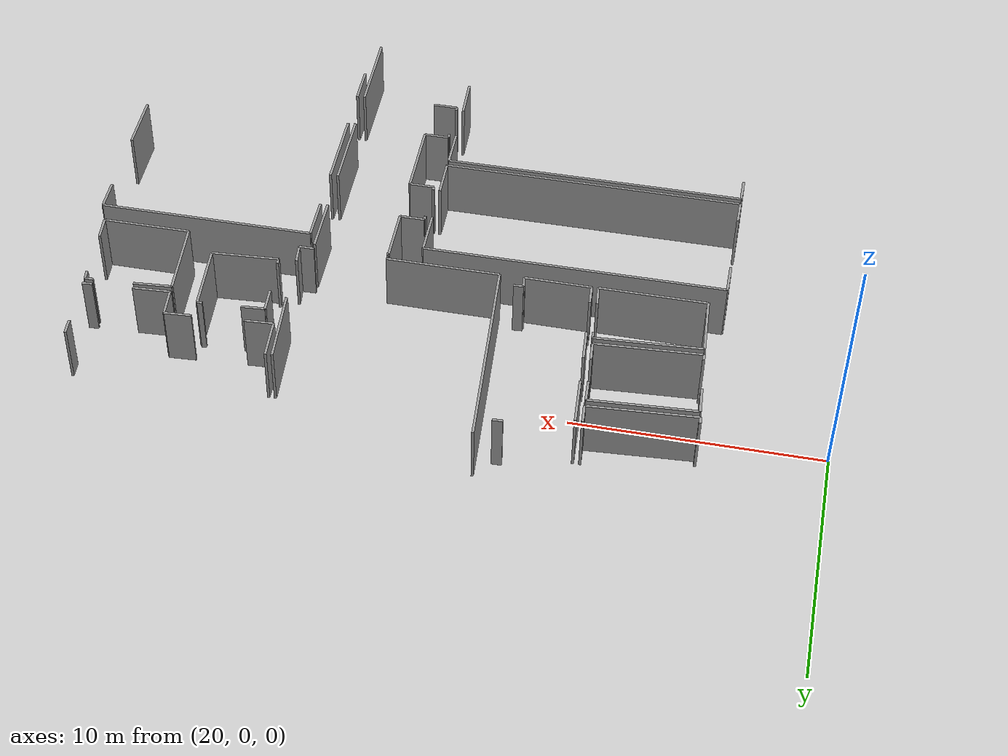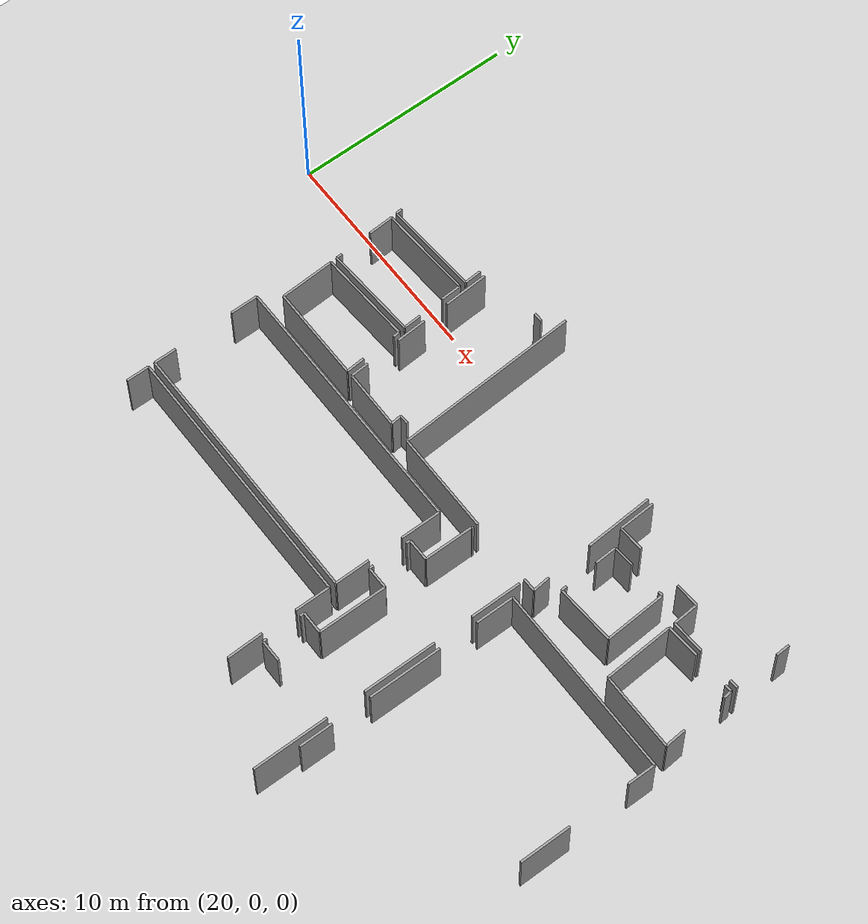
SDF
<sdf version="1.6">
 <world name="default">
  <model name="ground_plane">
   <static>1</static>
   <link name="link">
    <collision name="collision">
     <geometry><plane><normal>0 0 1</normal><size>100 100</size></plane></geometry>
     <surface><friction><ode><mu>100</mu><mu2>50</mu2></ode></friction></surface>
    </collision>
    <visual name="visual">
     <cast_shadows>0</cast_shadows>
     <geometry><plane><normal>0 0 1</normal><size>100 100</size></plane></geometry>
     <material>
      <script><uri>file://media/materials/scripts/gazebo.material</uri><name>Gazebo/Grey</name></script>
     </material>
    </visual>
   </link>
  </model>
  <model name="50025632">
   <static>1</static>
   <link name="Wall_155">
    <collision name="Wall_155_Collision">
     <geometry><box><size>0.606626743355 0.1 2.5</size></box></geometry>
     <pose>0.303313371678 0 1.25 0 0 0</pose>
    </collision>
    <visual name="Wall_155_Visual">
     <pose>0.303313371678 0 1.25 0 0 0</pose>
     <geometry><box><size>0.606626743355 0.1 2.5</size></box></geometry>
     <material>
      <script><uri>file://media/materials/scripts/gazebo.material</uri><name>Gazebo/Grey</name></script>
      <ambient>1 1 1 1</ambient>
     </material>
    </visual>
    <pose>91.8883321585 -53.5030069792 0 0 0 -3.13279891042</pose>
   </link>
   <link name="Wall_156">
    <collision name="Wall_156_Collision">
     <geometry><box><size>4.5834504688 0.1 2.5</size></box></geometry>
     <pose>2.2917252344 0 1.25 0 0 0</pose>
    </collision>
    <visual name="Wall_156_Visual">
     <pose>2.2917252344 0 1.25 0 0 0</pose>
     <geometry><box><size>4.5834504688 0.1 2.5</size></box></geometry>
     <material>
      <script><uri>file://media/materials/scripts/gazebo.material</uri><name>Gazebo/Grey</name></script>
      <ambient>1 1 1 1</ambient>
     </material>
    </visual>
    <pose>88.3373659243 -53.5046581188 0 0 0 3.1391263965</pose>
   </link>
   <link name="Wall_157">
    <collision name="Wall_157_Collision">
     <geometry><box><size>8.34040686701 0.1 2.5</size></box></geometry>
     <pose>4.1702034335 0 1.25 0 0 0</pose>
    </collision>
    <visual name="Wall_157_Visual">
     <pose>4.1702034335 0 1.25 0 0 0</pose>
     <geometry><box><size>8.34040686701 0.1 2.5</size></box></geometry>
     <material>
      <script><uri>file://media/materials/scripts/gazebo.material</uri><name>Gazebo/Grey</name></script>
      <ambient>1 1 1 1</ambient>
     </material>
    </visual>
    <pose>83.7539293947 -53.4933541631 0 0 0 1.62840662752</pose>
   </link>
   <link name="Wall_164">
    <collision name="Wall_164_Collision">
     <geometry><box><size>3.0810093822 0.1 2.5</size></box></geometry>
     <pose>1.5405046911 0 1.25 0 0 0</pose>
    </collision>
    <visual name="Wall_164_Visual">
     <pose>1.5405046911 0 1.25 0 0 0</pose>
     <geometry><box><size>3.0810093822 0.1 2.5</size></box></geometry>
     <material>
      <script><uri>file://media/materials/scripts/gazebo.material</uri><name>Gazebo/Grey</name></script>
      <ambient>1 1 1 1</ambient>
     </material>
    </visual>
    <pose>91.5056488026 -47.5491245785 0 0 0 -1.50929295898</pose>
   </link>
   <link name="Wall_165">
    <collision name="Wall_165_Collision">
     <geometry><box><size>0.798812663162 0.1 2.5</size></box></geometry>
     <pose>0.399406331581 0 1.25 0 0 0</pose>
    </collision>
    <visual name="Wall_165_Visual">
     <pose>0.399406331581 0 1.25 0 0 0</pose>
     <geometry><box><size>0.798812663162 0.1 2.5</size></box></geometry>
     <material>
      <script><uri>file://media/materials/scripts/gazebo.material</uri><name>Gazebo/Grey</name></script>
      <ambient>1 1 1 1</ambient>
     </material>
    </visual>
    <pose>91.8086964253 -52.7081737761 0 0 0 -1.47093782192</pose>
   </link>
   <link name="Wall_166">
    <collision name="Wall_166_Collision">
     <geometry><box><size>2.68700098541 0.1 2.5</size></box></geometry>
     <pose>1.34350049271 0 1.25 0 0 0</pose>
    </collision>
    <visual name="Wall_166_Visual">
     <pose>1.34350049271 0 1.25 0 0 0</pose>
     <geometry><box><size>2.68700098541 0.1 2.5</size></box></geometry>
     <material>
      <script><uri>file://media/materials/scripts/gazebo.material</uri><name>Gazebo/Grey</name></script>
      <ambient>1 1 1 1</ambient>
     </material>
    </visual>
    <pose>82.7708662767 -53.5083414303 0 0 0 3.13346236713</pose>
   </link>
   <link name="Wall_167">
    <collision name="Wall_167_Collision">
     <geometry><box><size>0.822187524035 0.1 2.5</size></box></geometry>
     <pose>0.411093762017 0 1.25 0 0 0</pose>
    </collision>
    <visual name="Wall_167_Visual">
     <pose>0.411093762017 0 1.25 0 0 0</pose>
     <geometry><box><size>0.822187524035 0.1 2.5</size></box></geometry>
     <material>
      <script><uri>file://media/materials/scripts/gazebo.material</uri><name>Gazebo/Grey</name></script>
      <ambient>1 1 1 1</ambient>
     </material>
    </visual>
    <pose>80.0839540983 -53.4864955832 0 0 0 1.63262733236</pose>
   </link>
   <link name="Wall_168">
    <collision name="Wall_168_Collision">
     <geometry><box><size>1.36801589895 0.1 2.5</size></box></geometry>
     <pose>0.684007949477 0 1.25 0 0 0</pose>
    </collision>
    <visual name="Wall_168_Visual">
     <pose>0.684007949477 0 1.25 0 0 0</pose>
     <geometry><box><size>1.36801589895 0.1 2.5</size></box></geometry>
     <material>
      <script><uri>file://media/materials/scripts/gazebo.material</uri><name>Gazebo/Grey</name></script>
      <ambient>1 1 1 1</ambient>
     </material>
    </visual>
    <pose>79.924174589 -51.053731893 0 0 0 1.63452978247</pose>
   </link>
   <link name="Wall_169">
    <collision name="Wall_169_Collision">
     <geometry><box><size>2.00503400734 0.1 2.5</size></box></geometry>
     <pose>1.00251700367 0 1.25 0 0 0</pose>
    </collision>
    <visual name="Wall_169_Visual">
     <pose>1.00251700367 0 1.25 0 0 0</pose>
     <geometry><box><size>2.00503400734 0.1 2.5</size></box></geometry>
     <material>
      <script><uri>file://media/materials/scripts/gazebo.material</uri><name>Gazebo/Grey</name></script>
      <ambient>1 1 1 1</ambient>
     </material>
    </visual>
    <pose>79.7729047991 -48.4963706681 0 0 0 1.62745790005</pose>
   </link>
   <link name="Wall_174">
    <collision name="Wall_174_Collision">
     <geometry><box><size>0.410545882057 0.1 2.5</size></box></geometry>
     <pose>0.205272941028 0 1.25 0 0 0</pose>
    </collision>
    <visual name="Wall_174_Visual">
     <pose>0.205272941028 0 1.25 0 0 0</pose>
     <geometry><box><size>0.410545882057 0.1 2.5</size></box></geometry>
     <material>
      <script><uri>file://media/materials/scripts/gazebo.material</uri><name>Gazebo/Grey</name></script>
      <ambient>1 1 1 1</ambient>
     </material>
    </visual>
    <pose>82.2798427607 -45.9514564956 0 0 0 0.0151597296591</pose>
   </link>
   <link name="Wall_176">
    <collision name="Wall_176_Collision">
     <geometry><box><size>0.398599786753 0.1 2.5</size></box></geometry>
     <pose>0.199299893377 0 1.25 0 0 0</pose>
    </collision>
    <visual name="Wall_176_Visual">
     <pose>0.199299893377 0 1.25 0 0 0</pose>
     <geometry><box><size>0.398599786753 0.1 2.5</size></box></geometry>
     <material>
      <script><uri>file://media/materials/scripts/gazebo.material</uri><name>Gazebo/Grey</name></script>
      <ambient>1 1 1 1</ambient>
     </material>
    </visual>
    <pose>83.1134142392 -53.0049978726 0 0 0 -3.07814027277</pose>
   </link>
   <link name="Wall_177">
    <collision name="Wall_177_Collision">
     <geometry><box><size>0.48125039329 0.1 2.5</size></box></geometry>
     <pose>0.240625196645 0 1.25 0 0 0</pose>
    </collision>
    <visual name="Wall_177_Visual">
     <pose>0.240625196645 0 1.25 0 0 0</pose>
     <geometry><box><size>0.48125039329 0.1 2.5</size></box></geometry>
     <material>
      <script><uri>file://media/materials/scripts/gazebo.material</uri><name>Gazebo/Grey</name></script>
      <ambient>1 1 1 1</ambient>
     </material>
    </visual>
    <pose>82.7156166054 -53.0302730096 0 0 0 -1.45573821305</pose>
   </link>
   <link name="Wall_178">
    <collision name="Wall_178_Collision">
     <geometry><box><size>4.31546369969 0.1 2.5</size></box></geometry>
     <pose>2.15773184985 0 1.25 0 0 0</pose>
    </collision>
    <visual name="Wall_178_Visual">
     <pose>2.15773184985 0 1.25 0 0 0</pose>
     <geometry><box><size>4.31546369969 0.1 2.5</size></box></geometry>
     <material>
      <script><uri>file://media/materials/scripts/gazebo.material</uri><name>Gazebo/Grey</name></script>
      <ambient>1 1 1 1</ambient>
     </material>
    </visual>
    <pose>79.4317539548 -47.2811319197 0 0 0 -3.08013034189</pose>
   </link>
   <link name="Wall_179">
    <collision name="Wall_179_Collision">
     <geometry><box><size>0.28802039587 0.1 2.5</size></box></geometry>
     <pose>0.144010197935 0 1.25 0 0 0</pose>
    </collision>
    <visual name="Wall_179_Visual">
     <pose>0.144010197935 0 1.25 0 0 0</pose>
     <geometry><box><size>0.28802039587 0.1 2.5</size></box></geometry>
     <material>
      <script><uri>file://media/materials/scripts/gazebo.material</uri><name>Gazebo/Grey</name></script>
      <ambient>1 1 1 1</ambient>
     </material>
    </visual>
    <pose>75.1244387713 -47.5462033315 0 0 0 1.64760203955</pose>
   </link>
   <link name="Wall_183">
    <collision name="Wall_183_Collision">
     <geometry><box><size>0.780791954179 0.1 2.5</size></box></geometry>
     <pose>0.39039597709 0 1.25 0 0 0</pose>
    </collision>
    <visual name="Wall_183_Visual">
     <pose>0.39039597709 0 1.25 0 0 0</pose>
     <geometry><box><size>0.780791954179 0.1 2.5</size></box></geometry>
     <material>
      <script><uri>file://media/materials/scripts/gazebo.material</uri><name>Gazebo/Grey</name></script>
      <ambient>1 1 1 1</ambient>
     </material>
    </visual>
    <pose>79.3841249278 -46.5017940267 0 0 0 -1.50975751207</pose>
   </link>
   <link name="Wall_184">
    <collision name="Wall_184_Collision">
     <geometry><box><size>4.26593269141 0.1 2.5</size></box></geometry>
     <pose>2.1329663457 0 1.25 0 0 0</pose>
    </collision>
    <visual name="Wall_184_Visual">
     <pose>2.1329663457 0 1.25 0 0 0</pose>
     <geometry><box><size>4.26593269141 0.1 2.5</size></box></geometry>
     <material>
      <script><uri>file://media/materials/scripts/gazebo.material</uri><name>Gazebo/Grey</name></script>
      <ambient>1 1 1 1</ambient>
     </material>
    </visual>
    <pose>79.6020753555 -50.4981869217 0 0 0 -3.08478448982</pose>
   </link>
   <link name="Wall_185">
    <collision name="Wall_185_Collision">
     <geometry><box><size>0.267362039866 0.1 2.5</size></box></geometry>
     <pose>0.133681019933 0 1.25 0 0 0</pose>
    </collision>
    <visual name="Wall_185_Visual">
     <pose>0.133681019933 0 1.25 0 0 0</pose>
     <geometry><box><size>0.267362039866 0.1 2.5</size></box></geometry>
     <material>
      <script><uri>file://media/materials/scripts/gazebo.material</uri><name>Gazebo/Grey</name></script>
      <ambient>1 1 1 1</ambient>
     </material>
    </visual>
    <pose>75.3430242527 -50.7403964005 0 0 0 1.60215486515</pose>
   </link>
   <link name="Wall_186">
    <collision name="Wall_186_Collision">
     <geometry><box><size>1.15443016643 0.1 2.5</size></box></geometry>
     <pose>0.577215083217 0 1.25 0 0 0</pose>
    </collision>
    <visual name="Wall_186_Visual">
     <pose>0.577215083217 0 1.25 0 0 0</pose>
     <geometry><box><size>1.15443016643 0.1 2.5</size></box></geometry>
     <material>
      <script><uri>file://media/materials/scripts/gazebo.material</uri><name>Gazebo/Grey</name></script>
      <ambient>1 1 1 1</ambient>
     </material>
    </visual>
    <pose>75.2344300711 -48.9783764217 0 0 0 1.62869934839</pose>
   </link>
   <link name="Wall_187">
    <collision name="Wall_187_Collision">
     <geometry><box><size>4.26605949727 0.1 2.5</size></box></geometry>
     <pose>2.13302974863 0 1.25 0 0 0</pose>
    </collision>
    <visual name="Wall_187_Visual">
     <pose>2.13302974863 0 1.25 0 0 0</pose>
     <geometry><box><size>4.26605949727 0.1 2.5</size></box></geometry>
     <material>
      <script><uri>file://media/materials/scripts/gazebo.material</uri><name>Gazebo/Grey</name></script>
      <ambient>1 1 1 1</ambient>
     </material>
    </visual>
    <pose>75.1676224225 -47.8258809782 0 0 0 0.0568064733662</pose>
   </link>
   <link name="Wall_188">
    <collision name="Wall_188_Collision">
     <geometry><box><size>0.92786006822 0.1 2.5</size></box></geometry>
     <pose>0.46393003411 0 1.25 0 0 0</pose>
    </collision>
    <visual name="Wall_188_Visual">
     <pose>0.46393003411 0 1.25 0 0 0</pose>
     <geometry><box><size>0.92786006822 0.1 2.5</size></box></geometry>
     <material>
      <script><uri>file://media/materials/scripts/gazebo.material</uri><name>Gazebo/Grey</name></script>
      <ambient>1 1 1 1</ambient>
     </material>
    </visual>
    <pose>79.426800536 -47.5836714994 0 0 0 -1.52588273133</pose>
   </link>
   <link name="Wall_189">
    <collision name="Wall_189_Collision">
     <geometry><box><size>0.809978560949 0.1 2.5</size></box></geometry>
     <pose>0.404989280474 0 1.25 0 0 0</pose>
    </collision>
    <visual name="Wall_189_Visual">
     <pose>0.404989280474 0 1.25 0 0 0</pose>
     <geometry><box><size>0.809978560949 0.1 2.5</size></box></geometry>
     <material>
      <script><uri>file://media/materials/scripts/gazebo.material</uri><name>Gazebo/Grey</name></script>
      <ambient>1 1 1 1</ambient>
     </material>
    </visual>
    <pose>79.5519061137 -49.6897635695 0 0 0 -1.50881767914</pose>
   </link>
   <link name="Wall_190">
    <collision name="Wall_190_Collision">
     <geometry><box><size>4.32585875136 0.1 2.5</size></box></geometry>
     <pose>2.16292937568 0 1.25 0 0 0</pose>
    </collision>
    <visual name="Wall_190_Visual">
     <pose>2.16292937568 0 1.25 0 0 0</pose>
     <geometry><box><size>4.32585875136 0.1 2.5</size></box></geometry>
     <material>
      <script><uri>file://media/materials/scripts/gazebo.material</uri><name>Gazebo/Grey</name></script>
      <ambient>1 1 1 1</ambient>
     </material>
    </visual>
    <pose>79.8192637187 -53.5046581188 0 0 0 3.14159265359</pose>
   </link>
   <link name="Wall_191">
    <collision name="Wall_191_Collision">
     <geometry><box><size>2.46681464664 0.1 2.5</size></box></geometry>
     <pose>1.23340732332 0 1.25 0 0 0</pose>
    </collision>
    <visual name="Wall_191_Visual">
     <pose>1.23340732332 0 1.25 0 0 0</pose>
     <geometry><box><size>2.46681464664 0.1 2.5</size></box></geometry>
     <material>
      <script><uri>file://media/materials/scripts/gazebo.material</uri><name>Gazebo/Grey</name></script>
      <ambient>1 1 1 1</ambient>
     </material>
    </visual>
    <pose>75.4934049674 -53.5046581188 0 0 0 1.62163663586</pose>
   </link>
   <link name="Wall_192">
    <collision name="Wall_192_Collision">
     <geometry><box><size>4.28568527296 0.1 2.5</size></box></geometry>
     <pose>2.14284263648 0 1.25 0 0 0</pose>
    </collision>
    <visual name="Wall_192_Visual">
     <pose>2.14284263648 0 1.25 0 0 0</pose>
     <geometry><box><size>4.28568527296 0.1 2.5</size></box></geometry>
     <material>
      <script><uri>file://media/materials/scripts/gazebo.material</uri><name>Gazebo/Grey</name></script>
      <ambient>1 1 1 1</ambient>
     </material>
    </visual>
    <pose>75.3680453682 -51.0410308192 0 0 0 0.0574662688229</pose>
   </link>
   <link name="Wall_193">
    <collision name="Wall_193_Collision">
     <geometry><box><size>0.29108938366 0.1 2.5</size></box></geometry>
     <pose>0.14554469183 0 1.25 0 0 0</pose>
    </collision>
    <visual name="Wall_193_Visual">
     <pose>0.14554469183 0 1.25 0 0 0</pose>
     <geometry><box><size>0.29108938366 0.1 2.5</size></box></geometry>
     <material>
      <script><uri>file://media/materials/scripts/gazebo.material</uri><name>Gazebo/Grey</name></script>
      <ambient>1 1 1 1</ambient>
     </material>
    </visual>
    <pose>79.6466561248 -50.7948840074 0 0 0 -1.50573742059</pose>
   </link>
   <link name="Wall_194">
    <collision name="Wall_194_Collision">
     <geometry><box><size>0.856688449761 0.1 2.5</size></box></geometry>
     <pose>0.42834422488 0 1.25 0 0 0</pose>
    </collision>
    <visual name="Wall_194_Visual">
     <pose>0.42834422488 0 1.25 0 0 0</pose>
     <geometry><box><size>0.856688449761 0.1 2.5</size></box></geometry>
     <material>
      <script><uri>file://media/materials/scripts/gazebo.material</uri><name>Gazebo/Grey</name></script>
      <ambient>1 1 1 1</ambient>
     </material>
    </visual>
    <pose>79.7426762433 -52.6513999759 0 0 0 -1.48127736338</pose>
   </link>
   <link name="Wall_195">
    <collision name="Wall_195_Collision">
     <geometry><box><size>0.626272115422 0.1 2.5</size></box></geometry>
     <pose>0.313136057711 0 1.25 0 0 0</pose>
    </collision>
    <visual name="Wall_195_Visual">
     <pose>0.313136057711 0 1.25 0 0 0</pose>
     <geometry><box><size>0.626272115422 0.1 2.5</size></box></geometry>
     <material>
      <script><uri>file://media/materials/scripts/gazebo.material</uri><name>Gazebo/Grey</name></script>
      <ambient>1 1 1 1</ambient>
     </material>
    </visual>
    <pose>99.6400515664 -47.8087345285 0 0 0 1.62354993501</pose>
   </link>
   <link name="Wall_201">
    <collision name="Wall_201_Collision">
     <geometry><box><size>1.63744721157 0.1 2.5</size></box></geometry>
     <pose>0.818723605783 0 1.25 0 0 0</pose>
    </collision>
    <visual name="Wall_201_Visual">
     <pose>0.818723605783 0 1.25 0 0 0</pose>
     <geometry><box><size>1.63744721157 0.1 2.5</size></box></geometry>
     <material>
      <script><uri>file://media/materials/scripts/gazebo.material</uri><name>Gazebo/Grey</name></script>
      <ambient>1 1 1 1</ambient>
     </material>
    </visual>
    <pose>91.7708472251 -47.5365505153 0 0 0 -1.5206674981</pose>
   </link>
   <link name="Wall_202">
    <collision name="Wall_202_Collision">
     <geometry><box><size>1.16097912417 0.1 2.5</size></box></geometry>
     <pose>0.580489562087 0 1.25 0 0 0</pose>
    </collision>
    <visual name="Wall_202_Visual">
     <pose>0.580489562087 0 1.25 0 0 0</pose>
     <geometry><box><size>1.16097912417 0.1 2.5</size></box></geometry>
     <material>
      <script><uri>file://media/materials/scripts/gazebo.material</uri><name>Gazebo/Grey</name></script>
      <ambient>1 1 1 1</ambient>
     </material>
    </visual>
    <pose>91.8528961624 -49.1719407876 0 0 0 0.0549462806253</pose>
   </link>
   <link name="Wall_203">
    <collision name="Wall_203_Collision">
     <geometry><box><size>1.08889156004 0.1 2.5</size></box></geometry>
     <pose>0.544445780021 0 1.25 0 0 0</pose>
    </collision>
    <visual name="Wall_203_Visual">
     <pose>0.544445780021 0 1.25 0 0 0</pose>
     <geometry><box><size>1.08889156004 0.1 2.5</size></box></geometry>
     <material>
      <script><uri>file://media/materials/scripts/gazebo.material</uri><name>Gazebo/Grey</name></script>
      <ambient>1 1 1 1</ambient>
     </material>
    </visual>
    <pose>95.0761746906 -48.9707557774 0 0 0 0.0555502664196</pose>
   </link>
   <link name="Wall_204">
    <collision name="Wall_204_Collision">
     <geometry><box><size>1.16023614666 0.1 2.5</size></box></geometry>
     <pose>0.58011807333 0 1.25 0 0 0</pose>
    </collision>
    <visual name="Wall_204_Visual">
     <pose>0.58011807333 0 1.25 0 0 0</pose>
     <geometry><box><size>1.16023614666 0.1 2.5</size></box></geometry>
     <material>
      <script><uri>file://media/materials/scripts/gazebo.material</uri><name>Gazebo/Grey</name></script>
      <ambient>1 1 1 1</ambient>
     </material>
    </visual>
    <pose>96.1633866143 -48.9102986658 0 0 0 -1.49540976691</pose>
   </link>
   <link name="Wall_205">
    <collision name="Wall_205_Collision">
     <geometry><box><size>1.50904508078 0.1 2.5</size></box></geometry>
     <pose>0.754522540392 0 1.25 0 0 0</pose>
    </collision>
    <visual name="Wall_205_Visual">
     <pose>0.754522540392 0 1.25 0 0 0</pose>
     <geometry><box><size>1.50904508078 0.1 2.5</size></box></geometry>
     <material>
      <script><uri>file://media/materials/scripts/gazebo.material</uri><name>Gazebo/Grey</name></script>
      <ambient>1 1 1 1</ambient>
     </material>
    </visual>
    <pose>96.2507700026 -50.0672394851 0 0 0 0.0522910985658</pose>
   </link>
   <link name="Wall_206">
    <collision name="Wall_206_Collision">
     <geometry><box><size>0.406153037101 0.1 2.5</size></box></geometry>
     <pose>0.203076518551 0 1.25 0 0 0</pose>
    </collision>
    <visual name="Wall_206_Visual">
     <pose>0.203076518551 0 1.25 0 0 0</pose>
     <geometry><box><size>0.406153037101 0.1 2.5</size></box></geometry>
     <material>
      <script><uri>file://media/materials/scripts/gazebo.material</uri><name>Gazebo/Grey</name></script>
      <ambient>1 1 1 1</ambient>
     </material>
    </visual>
    <pose>99.3644382633 -49.8918376549 0 0 0 0.0697924157028</pose>
   </link>
   <link name="Wall_207">
    <collision name="Wall_207_Collision">
     <geometry><box><size>3.51096209927 0.1 2.5</size></box></geometry>
     <pose>1.75548104963 0 1.25 0 0 0</pose>
    </collision>
    <visual name="Wall_207_Visual">
     <pose>1.75548104963 0 1.25 0 0 0</pose>
     <geometry><box><size>3.51096209927 0.1 2.5</size></box></geometry>
     <material>
      <script><uri>file://media/materials/scripts/gazebo.material</uri><name>Gazebo/Grey</name></script>
      <ambient>1 1 1 1</ambient>
     </material>
    </visual>
    <pose>99.9740898093 -53.4991966571 0 0 0 -3.14003710733</pose>
   </link>
   <link name="Wall_208">
    <collision name="Wall_208_Collision">
     <geometry><box><size>3.15827531973 0.1 2.5</size></box></geometry>
     <pose>1.57913765987 0 1.25 0 0 0</pose>
    </collision>
    <visual name="Wall_208_Visual">
     <pose>1.57913765987 0 1.25 0 0 0</pose>
     <geometry><box><size>3.15827531973 0.1 2.5</size></box></geometry>
     <material>
      <script><uri>file://media/materials/scripts/gazebo.material</uri><name>Gazebo/Grey</name></script>
      <ambient>1 1 1 1</ambient>
     </material>
    </visual>
    <pose>96.4631319578 -53.5046581188 0 0 0 1.63498367007</pose>
   </link>
   <link name="Wall_209">
    <collision name="Wall_209_Collision">
     <geometry><box><size>1.53824167621 0.1 2.5</size></box></geometry>
     <pose>0.769120838107 0 1.25 0 0 0</pose>
    </collision>
    <visual name="Wall_209_Visual">
     <pose>0.769120838107 0 1.25 0 0 0</pose>
     <geometry><box><size>1.53824167621 0.1 2.5</size></box></geometry>
     <material>
      <script><uri>file://media/materials/scripts/gazebo.material</uri><name>Gazebo/Grey</name></script>
      <ambient>1 1 1 1</ambient>
     </material>
    </visual>
    <pose>96.2605498295 -50.3528866366 0 0 0 0.0739664853853</pose>
   </link>
   <link name="Wall_210">
    <collision name="Wall_210_Collision">
     <geometry><box><size>0.336713229859 0.1 2.5</size></box></geometry>
     <pose>0.16835661493 0 1.25 0 0 0</pose>
    </collision>
    <visual name="Wall_210_Visual">
     <pose>0.16835661493 0 1.25 0 0 0</pose>
     <geometry><box><size>0.336713229859 0.1 2.5</size></box></geometry>
     <material>
      <script><uri>file://media/materials/scripts/gazebo.material</uri><name>Gazebo/Grey</name></script>
      <ambient>1 1 1 1</ambient>
     </material>
    </visual>
    <pose>99.4076219144 -50.1511935834 0 0 0 0.0282943338485</pose>
   </link>
   <link name="Wall_211">
    <collision name="Wall_211_Collision">
     <geometry><box><size>0.376880157405 0.1 2.5</size></box></geometry>
     <pose>0.188440078703 0 1.25 0 0 0</pose>
    </collision>
    <visual name="Wall_211_Visual">
     <pose>0.188440078703 0 1.25 0 0 0</pose>
     <geometry><box><size>0.376880157405 0.1 2.5</size></box></geometry>
     <material>
      <script><uri>file://media/materials/scripts/gazebo.material</uri><name>Gazebo/Grey</name></script>
      <ambient>1 1 1 1</ambient>
     </material>
    </visual>
    <pose>99.7442003721 -50.141667778 0 0 0 -1.47967877372</pose>
   </link>
   <link name="Wall_212">
    <collision name="Wall_212_Collision">
     <geometry><box><size>0.952079004127 0.1 2.5</size></box></geometry>
     <pose>0.476039502064 0 1.25 0 0 0</pose>
    </collision>
    <visual name="Wall_212_Visual">
     <pose>0.476039502064 0 1.25 0 0 0</pose>
     <geometry><box><size>0.952079004127 0.1 2.5</size></box></geometry>
     <material>
      <script><uri>file://media/materials/scripts/gazebo.material</uri><name>Gazebo/Grey</name></script>
      <ambient>1 1 1 1</ambient>
     </material>
    </visual>
    <pose>99.897883366 -52.5501724171 0 0 0 -1.49066846875</pose>
   </link>
   <link name="Wall_213">
    <collision name="Wall_213_Collision">
     <geometry><box><size>2.70245387033 0.1 2.5</size></box></geometry>
     <pose>1.35122693516 0 1.25 0 0 0</pose>
    </collision>
    <visual name="Wall_213_Visual">
     <pose>1.35122693516 0 1.25 0 0 0</pose>
     <geometry><box><size>2.70245387033 0.1 2.5</size></box></geometry>
     <material>
      <script><uri>file://media/materials/scripts/gazebo.material</uri><name>Gazebo/Grey</name></script>
      <ambient>1 1 1 1</ambient>
     </material>
    </visual>
    <pose>95.220839922 -52.4850159081 0 0 0 -3.07998591722</pose>
   </link>
   <link name="Wall_214">
    <collision name="Wall_214_Collision">
     <geometry><box><size>0.247014989632 0.1 2.5</size></box></geometry>
     <pose>0.123507494816 0 1.25 0 0 0</pose>
    </collision>
    <visual name="Wall_214_Visual">
     <pose>0.123507494816 0 1.25 0 0 0</pose>
     <geometry><box><size>0.247014989632 0.1 2.5</size></box></geometry>
     <material>
      <script><uri>file://media/materials/scripts/gazebo.material</uri><name>Gazebo/Grey</name></script>
      <ambient>1 1 1 1</ambient>
     </material>
    </visual>
    <pose>92.523512863 -52.6513999759 0 0 0 1.60010891616</pose>
   </link>
   <link name="Wall_215">
    <collision name="Wall_215_Collision">
     <geometry><box><size>1.00340171722 0.1 2.5</size></box></geometry>
     <pose>0.50170085861 0 1.25 0 0 0</pose>
    </collision>
    <visual name="Wall_215_Visual">
     <pose>0.50170085861 0 1.25 0 0 0</pose>
     <geometry><box><size>1.00340171722 0.1 2.5</size></box></geometry>
     <material>
      <script><uri>file://media/materials/scripts/gazebo.material</uri><name>Gazebo/Grey</name></script>
      <ambient>1 1 1 1</ambient>
     </material>
    </visual>
    <pose>92.421904272 -50.8794731595 0 0 0 1.62145004478</pose>
   </link>
   <link name="Wall_216">
    <collision name="Wall_216_Collision">
     <geometry><box><size>0.953556541583 0.1 2.5</size></box></geometry>
     <pose>0.476778270791 0 1.25 0 0 0</pose>
    </collision>
    <visual name="Wall_216_Visual">
     <pose>0.476778270791 0 1.25 0 0 0</pose>
     <geometry><box><size>0.953556541583 0.1 2.5</size></box></geometry>
     <material>
      <script><uri>file://media/materials/scripts/gazebo.material</uri><name>Gazebo/Grey</name></script>
      <ambient>1 1 1 1</ambient>
     </material>
    </visual>
    <pose>92.3710999765 -49.8773584307 0 0 0 0.0686502942893</pose>
   </link>
   <link name="Wall_217">
    <collision name="Wall_217_Collision">
     <geometry><box><size>0.203886854074 0.1 2.5</size></box></geometry>
     <pose>0.101943427037 0 1.25 0 0 0</pose>
    </collision>
    <visual name="Wall_217_Visual">
     <pose>0.101943427037 0 1.25 0 0 0</pose>
     <geometry><box><size>0.203886854074 0.1 2.5</size></box></geometry>
     <material>
      <script><uri>file://media/materials/scripts/gazebo.material</uri><name>Gazebo/Grey</name></script>
      <ambient>1 1 1 1</ambient>
     </material>
    </visual>
    <pose>94.8509846508 -49.7230403831 0 0 0 0.0810719125452</pose>
   </link>
   <link name="Wall_218">
    <collision name="Wall_218_Collision">
     <geometry><box><size>2.78347944547 0.1 2.5</size></box></geometry>
     <pose>1.39173972273 0 1.25 0 0 0</pose>
    </collision>
    <visual name="Wall_218_Visual">
     <pose>1.39173972273 0 1.25 0 0 0</pose>
     <geometry><box><size>2.78347944547 0.1 2.5</size></box></geometry>
     <material>
      <script><uri>file://media/materials/scripts/gazebo.material</uri><name>Gazebo/Grey</name></script>
      <ambient>1 1 1 1</ambient>
     </material>
    </visual>
    <pose>95.0542018328 -49.706528987 0 0 0 -1.51089367872</pose>
   </link>
   <link name="Wall_240">
    <collision name="Wall_240_Collision">
     <geometry><box><size>0.998685438854 0.1 2.5</size></box></geometry>
     <pose>0.499342719427 0 1.25 0 0 0</pose>
    </collision>
    <visual name="Wall_240_Visual">
     <pose>0.499342719427 0 1.25 0 0 0</pose>
     <geometry><box><size>0.998685438854 0.1 2.5</size></box></geometry>
     <material>
      <script><uri>file://media/materials/scripts/gazebo.material</uri><name>Gazebo/Grey</name></script>
      <ambient>1 1 1 1</ambient>
     </material>
    </visual>
    <pose>88.2977385738 -63.0500231795 0 0 0 3.14159265359</pose>
   </link>
   <link name="Wall_241">
    <collision name="Wall_241_Collision">
     <geometry><box><size>0.165494992602 0.1 2.5</size></box></geometry>
     <pose>0.0827474963008 0 1.25 0 0 0</pose>
    </collision>
    <visual name="Wall_241_Visual">
     <pose>0.0827474963008 0 1.25 0 0 0</pose>
     <geometry><box><size>0.165494992602 0.1 2.5</size></box></geometry>
     <material>
      <script><uri>file://media/materials/scripts/gazebo.material</uri><name>Gazebo/Grey</name></script>
      <ambient>1 1 1 1</ambient>
     </material>
    </visual>
    <pose>87.2990531349 -63.0500231795 0 0 0 1.57079632679</pose>
   </link>
   <link name="Wall_242">
    <collision name="Wall_242_Collision">
     <geometry><box><size>0.196104580642 0.1 2.5</size></box></geometry>
     <pose>0.0980522903211 0 1.25 0 0 0</pose>
    </collision>
    <visual name="Wall_242_Visual">
     <pose>0.0980522903211 0 1.25 0 0 0</pose>
     <geometry><box><size>0.196104580642 0.1 2.5</size></box></geometry>
     <material>
      <script><uri>file://media/materials/scripts/gazebo.material</uri><name>Gazebo/Grey</name></script>
      <ambient>1 1 1 1</ambient>
     </material>
    </visual>
    <pose>87.2990531349 -61.3003232423 0 0 0 1.57079632679</pose>
   </link>
   <link name="Wall_243">
    <collision name="Wall_243_Collision">
     <geometry><box><size>0.99805038516 0.1 2.5</size></box></geometry>
     <pose>0.49902519258 0 1.25 0 0 0</pose>
    </collision>
    <visual name="Wall_243_Visual">
     <pose>0.49902519258 0 1.25 0 0 0</pose>
     <geometry><box><size>0.99805038516 0.1 2.5</size></box></geometry>
     <material>
      <script><uri>file://media/materials/scripts/gazebo.material</uri><name>Gazebo/Grey</name></script>
      <ambient>1 1 1 1</ambient>
     </material>
    </visual>
    <pose>87.2990531349 -61.1042186617 0 0 0 0.0</pose>
   </link>
   <link name="Wall_244">
    <collision name="Wall_244_Collision">
     <geometry><box><size>3.12255901236 0.1 2.5</size></box></geometry>
     <pose>1.56127950618 0 1.25 0 0 0</pose>
    </collision>
    <visual name="Wall_244_Visual">
     <pose>1.56127950618 0 1.25 0 0 0</pose>
     <geometry><box><size>3.12255901236 0.1 2.5</size></box></geometry>
     <material>
      <script><uri>file://media/materials/scripts/gazebo.material</uri><name>Gazebo/Grey</name></script>
      <ambient>1 1 1 1</ambient>
     </material>
    </visual>
    <pose>88.2971035201 -61.1042186617 0 0 0 1.57079632679</pose>
   </link>
   <link name="Wall_245">
    <collision name="Wall_245_Collision">
     <geometry><box><size>1.0021147288 0.1 2.5</size></box></geometry>
     <pose>0.5010573644 0 1.25 0 0 0</pose>
    </collision>
    <visual name="Wall_245_Visual">
     <pose>0.5010573644 0 1.25 0 0 0</pose>
     <geometry><box><size>1.0021147288 0.1 2.5</size></box></geometry>
     <material>
      <script><uri>file://media/materials/scripts/gazebo.material</uri><name>Gazebo/Grey</name></script>
      <ambient>1 1 1 1</ambient>
     </material>
    </visual>
    <pose>88.2971035201 -57.9816596493 0 0 0 3.14159265359</pose>
   </link>
   <link name="Wall_246">
    <collision name="Wall_246_Collision">
     <geometry><box><size>0.181625356424 0.1 2.5</size></box></geometry>
     <pose>0.0908126782119 0 1.25 0 0 0</pose>
    </collision>
    <visual name="Wall_246_Visual">
     <pose>0.0908126782119 0 1.25 0 0 0</pose>
     <geometry><box><size>0.181625356424 0.1 2.5</size></box></geometry>
     <material>
      <script><uri>file://media/materials/scripts/gazebo.material</uri><name>Gazebo/Grey</name></script>
      <ambient>1 1 1 1</ambient>
     </material>
    </visual>
    <pose>87.2949887913 -57.9816596493 0 0 0 1.57079632679</pose>
   </link>
   <link name="Wall_247">
    <collision name="Wall_247_Collision">
     <geometry><box><size>0.192167247741 0.1 2.5</size></box></geometry>
     <pose>0.0960836238704 0 1.25 0 0 0</pose>
    </collision>
    <visual name="Wall_247_Visual">
     <pose>0.0960836238704 0 1.25 0 0 0</pose>
     <geometry><box><size>0.192167247741 0.1 2.5</size></box></geometry>
     <material>
      <script><uri>file://media/materials/scripts/gazebo.material</uri><name>Gazebo/Grey</name></script>
      <ambient>1 1 1 1</ambient>
     </material>
    </visual>
    <pose>87.2949887913 -56.2023662101 0 0 0 1.57079632679</pose>
   </link>
   <link name="Wall_248">
    <collision name="Wall_248_Collision">
     <geometry><box><size>0.999828535503 0.1 2.5</size></box></geometry>
     <pose>0.499914267751 0 1.25 0 0 0</pose>
    </collision>
    <visual name="Wall_248_Visual">
     <pose>0.499914267751 0 1.25 0 0 0</pose>
     <geometry><box><size>0.999828535503 0.1 2.5</size></box></geometry>
     <material>
      <script><uri>file://media/materials/scripts/gazebo.material</uri><name>Gazebo/Grey</name></script>
      <ambient>1 1 1 1</ambient>
     </material>
    </visual>
    <pose>87.2949887913 -56.0101989623 0 0 0 0.0</pose>
   </link>
   <link name="Wall_249">
    <collision name="Wall_249_Collision">
     <geometry><box><size>2.24580388272 0.1 2.5</size></box></geometry>
     <pose>1.12290194136 0 1.25 0 0 0</pose>
    </collision>
    <visual name="Wall_249_Visual">
     <pose>1.12290194136 0 1.25 0 0 0</pose>
     <geometry><box><size>2.24580388272 0.1 2.5</size></box></geometry>
     <material>
      <script><uri>file://media/materials/scripts/gazebo.material</uri><name>Gazebo/Grey</name></script>
      <ambient>1 1 1 1</ambient>
     </material>
    </visual>
    <pose>88.2948173268 -56.0101989623 0 0 0 1.57079632679</pose>
   </link>
   <link name="Wall_250">
    <collision name="Wall_250_Collision">
     <geometry><box><size>0.071380035182 0.1 2.5</size></box></geometry>
     <pose>0.035690017591 0 1.25 0 0 0</pose>
    </collision>
    <visual name="Wall_250_Visual">
     <pose>0.035690017591 0 1.25 0 0 0</pose>
     <geometry><box><size>0.071380035182 0.1 2.5</size></box></geometry>
     <material>
      <script><uri>file://media/materials/scripts/gazebo.material</uri><name>Gazebo/Grey</name></script>
      <ambient>1 1 1 1</ambient>
     </material>
    </visual>
    <pose>88.2948173268 -53.7643950796 0 0 0 0.0</pose>
   </link>
   <link name="Wall_251">
    <collision name="Wall_251_Collision">
     <geometry><box><size>2.31464370313 0.1 2.5</size></box></geometry>
     <pose>1.15732185156 0 1.25 0 0 0</pose>
    </collision>
    <visual name="Wall_251_Visual">
     <pose>1.15732185156 0 1.25 0 0 0</pose>
     <geometry><box><size>2.31464370313 0.1 2.5</size></box></geometry>
     <material>
      <script><uri>file://media/materials/scripts/gazebo.material</uri><name>Gazebo/Grey</name></script>
      <ambient>1 1 1 1</ambient>
     </material>
    </visual>
    <pose>91.3217372529 -53.7643950796 0 0 0 -1.57079632679</pose>
   </link>
   <link name="Wall_252">
    <collision name="Wall_252_Collision">
     <geometry><box><size>3.32526815142 0.1 2.5</size></box></geometry>
     <pose>1.66263407571 0 1.25 0 0 0</pose>
    </collision>
    <visual name="Wall_252_Visual">
     <pose>1.66263407571 0 1.25 0 0 0</pose>
     <geometry><box><size>3.32526815142 0.1 2.5</size></box></geometry>
     <material>
      <script><uri>file://media/materials/scripts/gazebo.material</uri><name>Gazebo/Grey</name></script>
      <ambient>1 1 1 1</ambient>
     </material>
    </visual>
    <pose>91.3217372529 -57.8799240476 0 0 0 -1.57079632679</pose>
   </link>
   <link name="Wall_253">
    <collision name="Wall_253_Collision">
     <geometry><box><size>3.42662272095 0.1 2.5</size></box></geometry>
     <pose>1.71331136048 0 1.25 0 0 0</pose>
    </collision>
    <visual name="Wall_253_Visual">
     <pose>1.71331136048 0 1.25 0 0 0</pose>
     <geometry><box><size>3.42662272095 0.1 2.5</size></box></geometry>
     <material>
      <script><uri>file://media/materials/scripts/gazebo.material</uri><name>Gazebo/Grey</name></script>
      <ambient>1 1 1 1</ambient>
     </material>
    </visual>
    <pose>91.3217372529 -62.9724196181 0 0 0 -1.57079632679</pose>
   </link>
   <link name="Wall_259">
    <collision name="Wall_259_Collision">
     <geometry><box><size>12.1770275677 0.1 2.5</size></box></geometry>
     <pose>6.08851378384 0 1.25 0 0 0</pose>
    </collision>
    <visual name="Wall_259_Visual">
     <pose>6.08851378384 0 1.25 0 0 0</pose>
     <geometry><box><size>12.1770275677 0.1 2.5</size></box></geometry>
     <material>
      <script><uri>file://media/materials/scripts/gazebo.material</uri><name>Gazebo/Grey</name></script>
      <ambient>1 1 1 1</ambient>
     </material>
    </visual>
    <pose>87.018994456 -59.3904627636 0 0 0 3.14159265359</pose>
   </link>
   <link name="Wall_260">
    <collision name="Wall_260_Collision">
     <geometry><box><size>1.01710199597 0.1 2.5</size></box></geometry>
     <pose>0.508550997987 0 1.25 0 0 0</pose>
    </collision>
    <visual name="Wall_260_Visual">
     <pose>0.508550997987 0 1.25 0 0 0</pose>
     <geometry><box><size>1.01710199597 0.1 2.5</size></box></geometry>
     <material>
      <script><uri>file://media/materials/scripts/gazebo.material</uri><name>Gazebo/Grey</name></script>
      <ambient>1 1 1 1</ambient>
     </material>
    </visual>
    <pose>74.8419668883 -59.3904627636 0 0 0 1.57079632679</pose>
   </link>
   <link name="Wall_261">
    <collision name="Wall_261_Collision">
     <geometry><box><size>1.26108962513 0.1 2.5</size></box></geometry>
     <pose>0.630544812564 0 1.25 0 0 0</pose>
    </collision>
    <visual name="Wall_261_Visual">
     <pose>0.630544812564 0 1.25 0 0 0</pose>
     <geometry><box><size>1.26108962513 0.1 2.5</size></box></geometry>
     <material>
      <script><uri>file://media/materials/scripts/gazebo.material</uri><name>Gazebo/Grey</name></script>
      <ambient>1 1 1 1</ambient>
     </material>
    </visual>
    <pose>74.8419668883 -55.6342471756 0 0 0 1.57079632679</pose>
   </link>
   <link name="Wall_262">
    <collision name="Wall_262_Collision">
     <geometry><box><size>12.167628773 0.1 2.5</size></box></geometry>
     <pose>6.08381438651 0 1.25 0 0 0</pose>
    </collision>
    <visual name="Wall_262_Visual">
     <pose>6.08381438651 0 1.25 0 0 0</pose>
     <geometry><box><size>12.167628773 0.1 2.5</size></box></geometry>
     <material>
      <script><uri>file://media/materials/scripts/gazebo.material</uri><name>Gazebo/Grey</name></script>
      <ambient>1 1 1 1</ambient>
     </material>
    </visual>
    <pose>74.8419668883 -54.3731575505 0 0 0 0.0</pose>
   </link>
   <link name="Wall_263">
    <collision name="Wall_263_Collision">
     <geometry><box><size>1.82895463811 0.1 2.5</size></box></geometry>
     <pose>0.914477319057 0 1.25 0 0 0</pose>
    </collision>
    <visual name="Wall_263_Visual">
     <pose>0.914477319057 0 1.25 0 0 0</pose>
     <geometry><box><size>1.82895463811 0.1 2.5</size></box></geometry>
     <material>
      <script><uri>file://media/materials/scripts/gazebo.material</uri><name>Gazebo/Grey</name></script>
      <ambient>1 1 1 1</ambient>
     </material>
    </visual>
    <pose>87.0095956613 -54.3731575505 0 0 0 -1.57079632679</pose>
   </link>
   <link name="Wall_264">
    <collision name="Wall_264_Collision">
     <geometry><box><size>1.58016855301 0.1 2.5</size></box></geometry>
     <pose>0.790084276504 0 1.25 0 0 0</pose>
    </collision>
    <visual name="Wall_264_Visual">
     <pose>0.790084276504 0 1.25 0 0 0</pose>
     <geometry><box><size>1.58016855301 0.1 2.5</size></box></geometry>
     <material>
      <script><uri>file://media/materials/scripts/gazebo.material</uri><name>Gazebo/Grey</name></script>
      <ambient>1 1 1 1</ambient>
     </material>
    </visual>
    <pose>87.0095956613 -57.8103221627 0 0 0 -1.56484832203</pose>
   </link>
   <link name="Wall_268">
    <collision name="Wall_268_Collision">
     <geometry><box><size>1.03729670344 0.1 2.5</size></box></geometry>
     <pose>0.518648351718 0 1.25 0 0 0</pose>
    </collision>
    <visual name="Wall_268_Visual">
     <pose>0.518648351718 0 1.25 0 0 0</pose>
     <geometry><box><size>1.03729670344 0.1 2.5</size></box></geometry>
     <material>
      <script><uri>file://media/materials/scripts/gazebo.material</uri><name>Gazebo/Grey</name></script>
      <ambient>1 1 1 1</ambient>
     </material>
    </visual>
    <pose>74.8415858561 -60.7250916065 0 0 0 1.57079632679</pose>
   </link>
   <link name="Wall_269">
    <collision name="Wall_269_Collision">
     <geometry><box><size>12.1596270965 0.1 2.5</size></box></geometry>
     <pose>6.07981354824 0 1.25 0 0 0</pose>
    </collision>
    <visual name="Wall_269_Visual">
     <pose>6.07981354824 0 1.25 0 0 0</pose>
     <geometry><box><size>12.1596270965 0.1 2.5</size></box></geometry>
     <material>
      <script><uri>file://media/materials/scripts/gazebo.material</uri><name>Gazebo/Grey</name></script>
      <ambient>1 1 1 1</ambient>
     </material>
    </visual>
    <pose>74.8415858561 -59.6877949031 0 0 0 0.0</pose>
   </link>
   <link name="Wall_270">
    <collision name="Wall_270_Collision">
     <geometry><box><size>1.60211345869 0.1 2.5</size></box></geometry>
     <pose>0.801056729346 0 1.25 0 0 0</pose>
    </collision>
    <visual name="Wall_270_Visual">
     <pose>0.801056729346 0 1.25 0 0 0</pose>
     <geometry><box><size>1.60211345869 0.1 2.5</size></box></geometry>
     <material>
      <script><uri>file://media/materials/scripts/gazebo.material</uri><name>Gazebo/Grey</name></script>
      <ambient>1 1 1 1</ambient>
     </material>
    </visual>
    <pose>87.0012129526 -59.6877949031 0 0 0 -1.57079632679</pose>
   </link>
   <link name="Wall_271">
    <collision name="Wall_271_Collision">
     <geometry><box><size>1.64275171017 0.1 2.5</size></box></geometry>
     <pose>0.821375855087 0 1.25 0 0 0</pose>
    </collision>
    <visual name="Wall_271_Visual">
     <pose>0.821375855087 0 1.25 0 0 0</pose>
     <geometry><box><size>1.64275171017 0.1 2.5</size></box></geometry>
     <material>
      <script><uri>file://media/materials/scripts/gazebo.material</uri><name>Gazebo/Grey</name></script>
      <ambient>1 1 1 1</ambient>
     </material>
    </visual>
    <pose>87.0012129526 -62.8869413909 0 0 0 -1.54605273119</pose>
   </link>
   <link name="Wall_383">
    <collision name="Wall_383_Collision">
     <geometry><box><size>2.31159544539 0.1 2.5</size></box></geometry>
     <pose>1.1557977227 0 1.25 0 0 0</pose>
    </collision>
    <visual name="Wall_383_Visual">
     <pose>1.1557977227 0 1.25 0 0 0</pose>
     <geometry><box><size>2.31159544539 0.1 2.5</size></box></geometry>
     <material>
      <script><uri>file://media/materials/scripts/gazebo.material</uri><name>Gazebo/Grey</name></script>
      <ambient>1 1 1 1</ambient>
     </material>
    </visual>
    <pose>100.301777515 -60.6934659325 0 0 0 1.57079632679</pose>
   </link>
   <link name="Wall_384">
    <collision name="Wall_384_Collision">
     <geometry><box><size>1.2574063137 0.1 2.5</size></box></geometry>
     <pose>0.628703156852 0 1.25 0 0 0</pose>
    </collision>
    <visual name="Wall_384_Visual">
     <pose>0.628703156852 0 1.25 0 0 0</pose>
     <geometry><box><size>1.2574063137 0.1 2.5</size></box></geometry>
     <material>
      <script><uri>file://media/materials/scripts/gazebo.material</uri><name>Gazebo/Grey</name></script>
      <ambient>1 1 1 1</ambient>
     </material>
    </visual>
    <pose>100.301777515 -55.5876342345 0 0 0 1.57079632679</pose>
   </link>
   <link name="Wall_385">
    <collision name="Wall_385_Collision">
     <geometry><box><size>8.673944382 0.1 2.5</size></box></geometry>
     <pose>4.336972191 0 1.25 0 0 0</pose>
    </collision>
    <visual name="Wall_385_Visual">
     <pose>4.336972191 0 1.25 0 0 0</pose>
     <geometry><box><size>8.673944382 0.1 2.5</size></box></geometry>
     <material>
      <script><uri>file://media/materials/scripts/gazebo.material</uri><name>Gazebo/Grey</name></script>
      <ambient>1 1 1 1</ambient>
     </material>
    </visual>
    <pose>100.301777515 -54.3302279208 0 0 0 3.14159265359</pose>
   </link>
   <link name="Wall_386">
    <collision name="Wall_386_Collision">
     <geometry><box><size>1.74652466866 0.1 2.5</size></box></geometry>
     <pose>0.87326233433 0 1.25 0 0 0</pose>
    </collision>
    <visual name="Wall_386_Visual">
     <pose>0.87326233433 0 1.25 0 0 0</pose>
     <geometry><box><size>1.74652466866 0.1 2.5</size></box></geometry>
     <material>
      <script><uri>file://media/materials/scripts/gazebo.material</uri><name>Gazebo/Grey</name></script>
      <ambient>1 1 1 1</ambient>
     </material>
    </visual>
    <pose>91.6278331333 -54.3302279208 0 0 0 -1.57079632679</pose>
   </link>
   <link name="Wall_387">
    <collision name="Wall_387_Collision">
     <geometry><box><size>3.32209288295 0.1 2.5</size></box></geometry>
     <pose>1.66104644148 0 1.25 0 0 0</pose>
    </collision>
    <visual name="Wall_387_Visual">
     <pose>1.66104644148 0 1.25 0 0 0</pose>
     <geometry><box><size>3.32209288295 0.1 2.5</size></box></geometry>
     <material>
      <script><uri>file://media/materials/scripts/gazebo.material</uri><name>Gazebo/Grey</name></script>
      <ambient>1 1 1 1</ambient>
     </material>
    </visual>
    <pose>91.6278331333 -57.8639206945 0 0 0 -1.57079632679</pose>
   </link>
   <link name="Wall_388">
    <collision name="Wall_388_Collision">
     <geometry><box><size>1.51765131742 0.1 2.5</size></box></geometry>
     <pose>0.758825658709 0 1.25 0 0 0</pose>
    </collision>
    <visual name="Wall_388_Visual">
     <pose>0.758825658709 0 1.25 0 0 0</pose>
     <geometry><box><size>1.51765131742 0.1 2.5</size></box></geometry>
     <material>
      <script><uri>file://media/materials/scripts/gazebo.material</uri><name>Gazebo/Grey</name></script>
      <ambient>1 1 1 1</ambient>
     </material>
    </visual>
    <pose>91.6278331333 -62.9694983711 0 0 0 -1.57079632679</pose>
   </link>
   <pose>-50.15 48.4557939124 0 0 0 0</pose>
  </model>
 </world>
</sdf>
